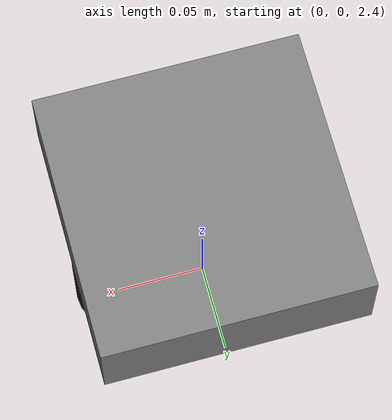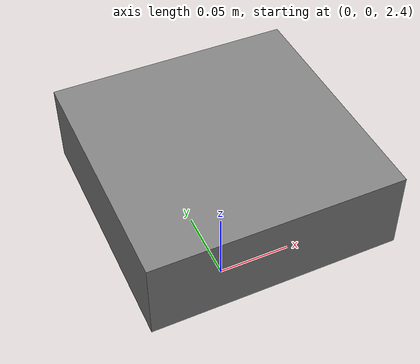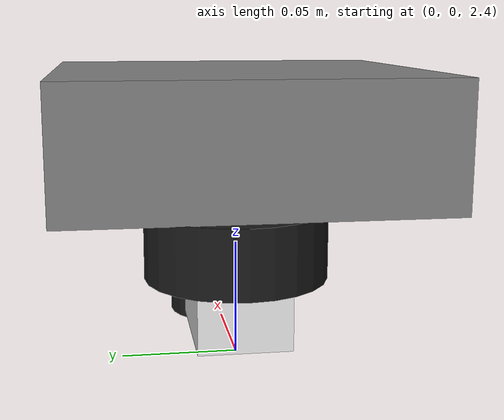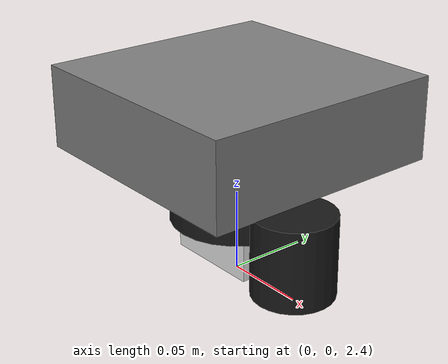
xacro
<?xml version="1.0"?>
<robot xmlns:xacro="http://www.ros.org/wiki/xacro" name="moss">

  <!-- 材料定义 -->
  <material name="black">
    <color rgba="0.1 0.1 0.1 1.0"/>
  </material>
  <material name="gray">
    <color rgba="0.5 0.5 0.5 1.0"/>
  </material>
  <material name="white">
    <color rgba="0.9 0.9 0.9 1.0"/>
  </material>

  <!-- 世界参考帧（Gazebo 需要显式定义） -->
  <link name="world"/>

  <!-- 底座 - 安装在天花板上 -->
  <link name="base_link">
    <visual>
      <geometry>
        <box size="0.15 0.15 0.05"/>
      </geometry>
      <material name="gray"/>
    </visual>
    <collision>
      <geometry>
        <box size="0.15 0.15 0.05"/>
      </geometry>
    </collision>
    <inertial>
      <mass value="0.5"/>
      <inertia ixx="0.001" ixy="0" ixz="0" iyy="0.001" iyz="0" izz="0.001"/>
    </inertial>
  </link>

  <!-- 固定底座到世界（天花板） -->
  <joint name="base_to_world" type="fixed">
    <parent link="world"/>
    <child link="base_link"/>
    <origin xyz="0 0 2.5" rpy="0 0 0"/> <!-- 天花板高度 2.5m -->
  </joint>

  <!-- Pan 轴（水平旋转） -->
  <joint name="pan_joint" type="revolute">
    <parent link="base_link"/>
    <child link="pan_link"/>
    <origin xyz="0 0 -0.05" rpy="0 0 0"/>
    <axis xyz="0 0 1"/>
    <limit lower="-3.1416" upper="3.1416" effort="1.0" velocity="1.0"/>
  </joint>

  <link name="pan_link">
    <visual>
      <geometry>
        <cylinder radius="0.04" length="0.03"/>
      </geometry>
      <material name="black"/>
    </visual>
    <inertial>
      <mass value="0.2"/>
      <inertia ixx="0.0001" ixy="0" ixz="0" iyy="0.0001" iyz="0" izz="0.0001"/>
    </inertial>
  </link>

  <!-- Tilt 轴（俯仰） -->
  <joint name="tilt_joint" type="revolute">
    <parent link="pan_link"/>
    <child link="tilt_link"/>
    <origin xyz="0 0 -0.02" rpy="0 0 0"/>
    <axis xyz="0 1 0"/>
    <limit lower="-1.57" upper="1.57" effort="0.5" velocity="0.5"/>
  </joint>

  <link name="tilt_link">
    <visual>
      <geometry>
        <box size="0.06 0.04 0.04"/>
      </geometry>
      <material name="white"/>
    </visual>
    <inertial>
      <mass value="0.15"/>
      <inertia ixx="0.0001" ixy="0" ixz="0" iyy="0.0001" iyz="0" izz="0.0001"/>
    </inertial>
  </link>

  <!-- Roll 轴（旋转） -->
  <joint name="roll_joint" type="revolute">
    <parent link="tilt_link"/>
    <child link="camera_link"/>
    <origin xyz="0.05 0 0" rpy="0 0 0"/>
    <axis xyz="1 0 0"/>
    <limit lower="-3.1416" upper="3.1416" effort="0.5" velocity="0.5"/>
  </joint>

  <!-- 摄像头 -->
  <link name="camera_link">
    <visual>
      <geometry>
        <cylinder radius="0.025" length="0.05"/>
      </geometry>
      <material name="black"/>
    </visual>
    <inertial>
      <mass value="0.1"/>
      <inertia ixx="0.00005" ixy="0" ixz="0" iyy="0.00005" iyz="0" izz="0.00005"/>
    </inertial>
  </link>

  <!-- 摄像头传感器 -->
  <gazebo reference="camera_link">
    <sensor type="camera" name="moss_camera">
      <update_rate>30.0</update_rate>
      <camera>
        <horizontal_fov>1.047</horizontal_fov>
        <image>
          <width>640</width>
          <height>480</height>
          <format>R8G8B8</format>
        </image>
        <clip>
          <near>0.1</near>
          <far>100</far>
        </clip>
      </camera>
    </sensor>
  </gazebo>

</robot>
